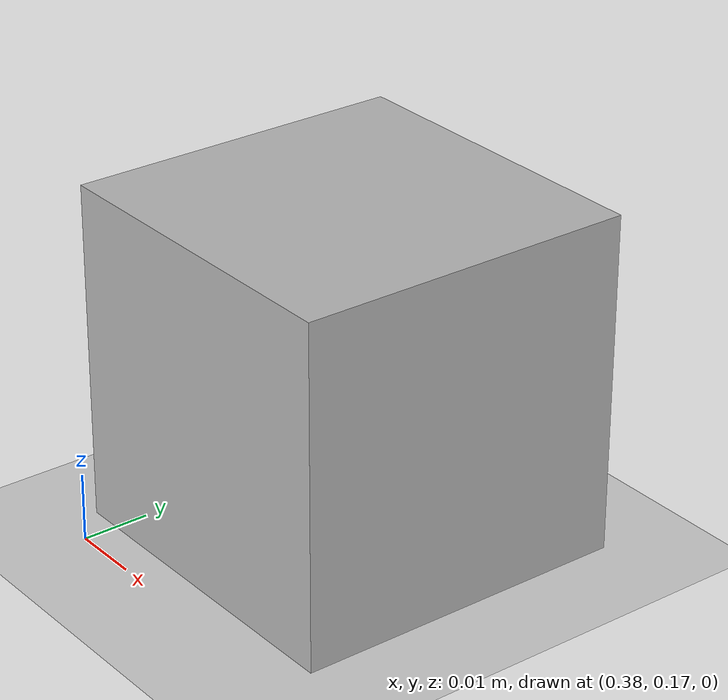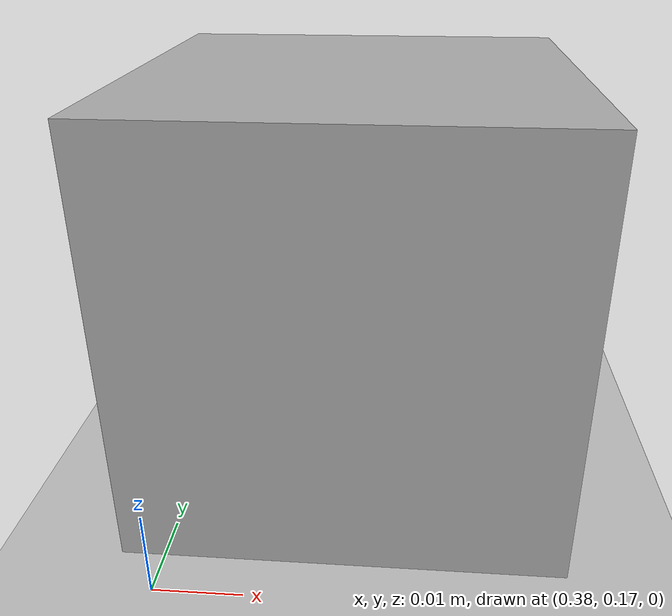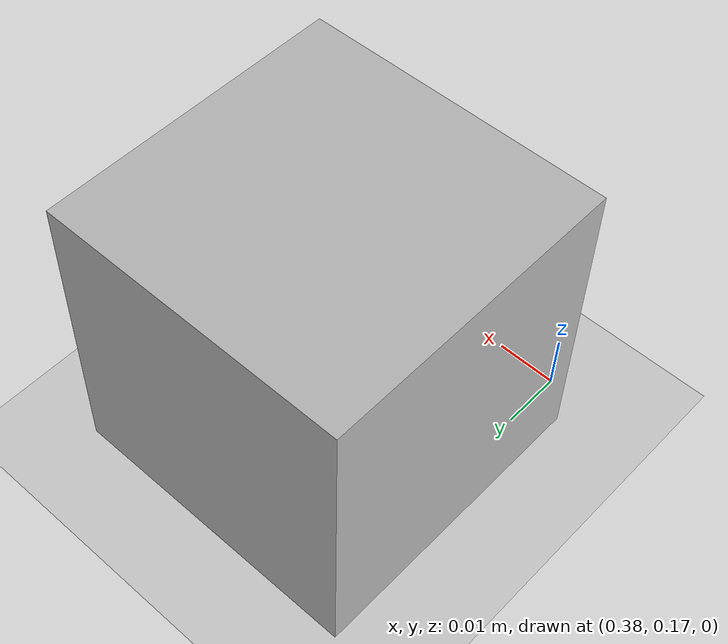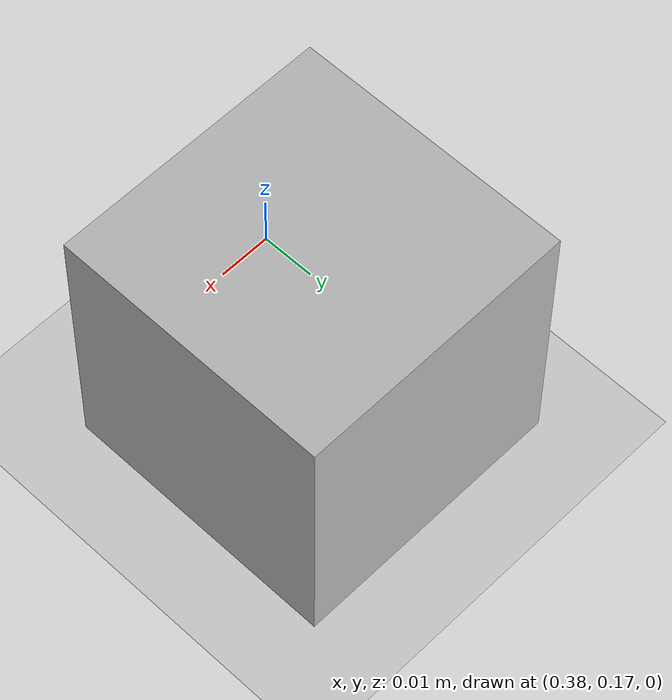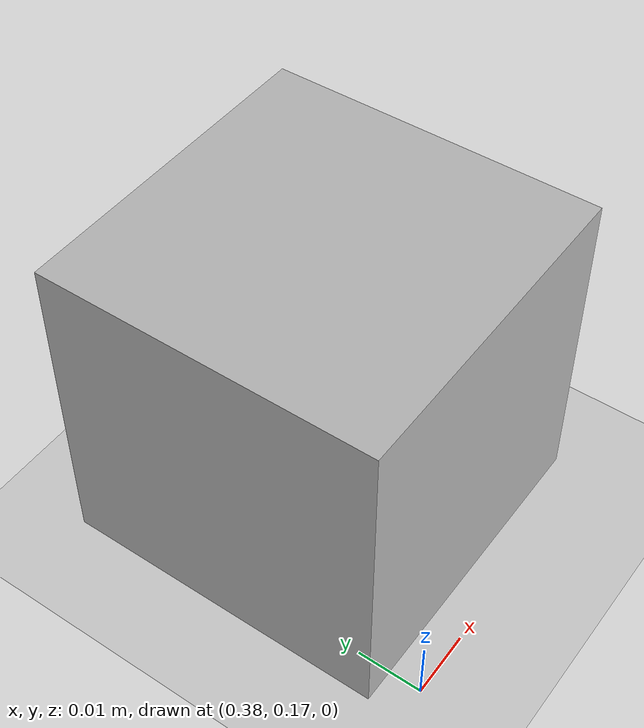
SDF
<?xml version="1.0" ?>
<sdf version="1.6">
  <world name="default">

    <include>
      <uri>model://ground_plane</uri>
    </include>

    <include>
      <uri>model://sun</uri>
    </include>

    <light name="ambient_light" type="point">
      <pose>0.4 0.2 2.0 0 0 0</pose>
      <diffuse>0.8 0.8 0.8 1</diffuse>
      <specular>0.1 0.1 0.1 1</specular>
      <attenuation>
        <range>10</range>
        <constant>0.5</constant>
        <linear>0.01</linear>
        <quadratic>0.001</quadratic>
      </attenuation>
    </light>

    <plugin name="gazebo_link_attacher" filename="libgazebo_link_attacher.so"/>

    <include>
      <uri>model://aruco_box</uri>
      <name>aruco_box</name>
      <pose>0.4 0.2 0.025 0 0 0</pose>
    </include>

  </world>
</sdf>

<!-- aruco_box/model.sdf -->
<sdf version="1.6">
  <model name="aruco_box">
    <static>false</static>
    <link name="aruco_box">
      <inertial>
        <mass>0.1</mass>
        <inertia>
          <ixx>0.000004167</ixx>
          <iyy>0.000004167</iyy>
          <izz>0.000004167</izz>
        </inertia>
      </inertial>
      <collision name="collision">
        <geometry>
          <box><size>0.05 0.05 0.05</size></box>
        </geometry>
      </collision>
      <visual name="visual">
        <geometry>
          <box><size>0.05 0.05 0.05</size></box>
        </geometry>
        <material>
          <script>
            <uri>model://aruco_box/materials/scripts/aruco_box.material</uri>
            <name>ArucoBox/Marker</name>
          </script>
        </material>
      </visual>
    </link>
  </model>
</sdf>
